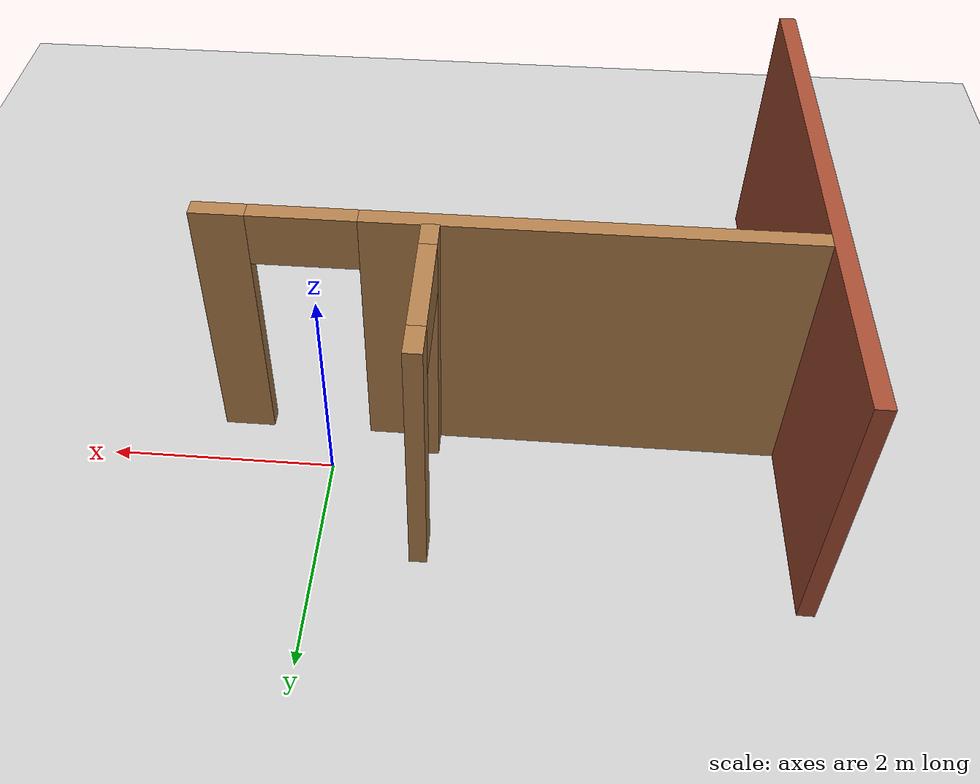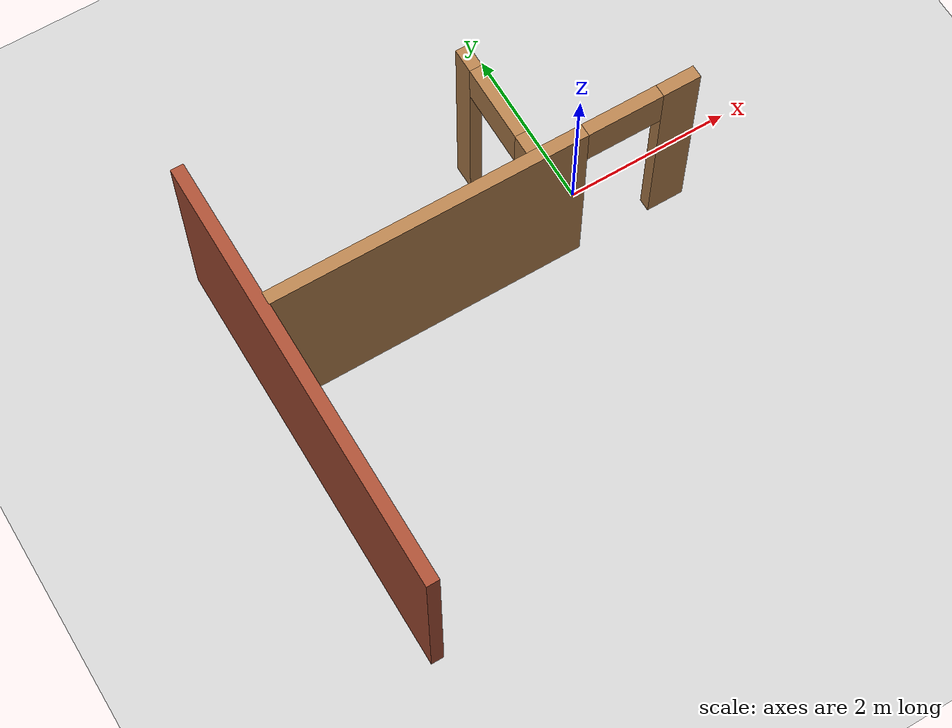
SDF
<sdf version="1.6">
 <world name="default">
  <model name="ground_plane">
   <static>1</static>
   <link name="link">
    <collision name="collision">
     <geometry><plane><normal>0 0 1</normal><size>100 100</size></plane></geometry>
     <surface>
      <contact><collide_bitmask>65535</collide_bitmask></contact>
      <friction><ode><mu>100</mu><mu2>50</mu2></ode></friction>
     </surface>
    </collision>
    <visual name="visual">
     <cast_shadows>0</cast_shadows>
     <geometry><plane><normal>0 0 1</normal><size>100 100</size></plane></geometry>
     <material>
      <script><uri>file://media/materials/scripts/gazebo.material</uri><name>Gazebo/Grey</name></script>
     </material>
    </visual>
   </link>
  </model>
  <model name="building">
   <link name="Wall_21">
    <pose>-1.42558 -0.646467 0 0 0 -1.5708</pose>
    <visual name="Wall_21_Visual_0">
     <pose>-0.57056 0 1.25 0 -0 0</pose>
     <geometry><box><size>0.282879 0.15 2.5</size></box></geometry>
     <material>
      <script><uri>file://media/materials/scripts/gazebo.material</uri><name>Gazebo/Wood</name></script>
      <ambient>1 1 1 1</ambient>
      <shader type="pixel"/>
      <diffuse>1 1 1 1</diffuse>
      <specular>0.2 0.2 0.2 1</specular>
      <emissive>0 0 0 1</emissive>
     </material>
     <meta><layer>0</layer></meta>
    </visual>
    <visual name="Wall_21_Visual_1">
     <pose>0.59144 0 1.25 0 -0 0</pose>
     <geometry><box><size>0.241121 0.15 2.5</size></box></geometry>
     <material>
      <script><uri>file://media/materials/scripts/gazebo.material</uri><name>Gazebo/Wood</name></script>
      <ambient>1 1 1 1</ambient>
      <shader type="pixel"/>
      <diffuse>1 1 1 1</diffuse>
      <specular>0.2 0.2 0.2 1</specular>
      <emissive>0 0 0 1</emissive>
     </material>
     <meta><layer>0</layer></meta>
    </visual>
    <visual name="Wall_21_Visual_2">
     <pose>0.020879 0 2.25 0 -0 0</pose>
     <geometry><box><size>0.9 0.15 0.5</size></box></geometry>
     <material>
      <script><uri>file://media/materials/scripts/gazebo.material</uri><name>Gazebo/Wood</name></script>
      <ambient>1 1 1 1</ambient>
      <shader type="pixel"/>
      <diffuse>1 1 1 1</diffuse>
      <specular>0.2 0.2 0.2 1</specular>
      <emissive>0 0 0 1</emissive>
     </material>
     <meta><layer>0</layer></meta>
    </visual>
    <collision name="Wall_21_Collision_0">
     <pose>-0.57056 0 1.25 0 -0 0</pose>
     <geometry><box><size>0.282879 0.15 2.5</size></box></geometry>
     <surface>
      <friction>
       <ode><mu>1</mu><mu2>1</mu2><fdir1>0 0 0</fdir1><slip1>0</slip1><slip2>0</slip2></ode>
       <torsional>
        <coefficient>1</coefficient>
        <patch_radius>0</patch_radius>
        <surface_radius>0</surface_radius>
        <use_patch_radius>1</use_patch_radius>
        <ode><slip>0</slip></ode>
       </torsional>
      </friction>
      <bounce><restitution_coefficient>0</restitution_coefficient><threshold>1e+06</threshold></bounce>
      <contact>
       <collide_without_contact>0</collide_without_contact>
       <collide_without_contact_bitmask>1</collide_without_contact_bitmask>
       <collide_bitmask>1</collide_bitmask>
       <ode>
        <soft_cfm>0</soft_cfm>
        <soft_erp>0.2</soft_erp>
        <kp>1e+13</kp>
        <kd>1</kd>
        <max_vel>0.01</max_vel>
        <min_depth>0</min_depth>
       </ode>
       <bullet>
        <split_impulse>1</split_impulse>
        <split_impulse_penetration_threshold>-0.01</split_impulse_penetration_threshold>
        <soft_cfm>0</soft_cfm>
        <soft_erp>0.2</soft_erp>
        <kp>1e+13</kp>
        <kd>1</kd>
       </bullet>
      </contact>
     </surface>
    </collision>
    <collision name="Wall_21_Collision_2">
     <pose>0.020879 0 2.25 0 -0 0</pose>
     <geometry><box><size>0.9 0.15 0.5</size></box></geometry>
     <surface>
      <friction>
       <ode><mu>1</mu><mu2>1</mu2><fdir1>0 0 0</fdir1><slip1>0</slip1><slip2>0</slip2></ode>
       <torsional>
        <coefficient>1</coefficient>
        <patch_radius>0</patch_radius>
        <surface_radius>0</surface_radius>
        <use_patch_radius>1</use_patch_radius>
        <ode><slip>0</slip></ode>
       </torsional>
      </friction>
      <bounce><restitution_coefficient>0</restitution_coefficient><threshold>1e+06</threshold></bounce>
      <contact>
       <collide_without_contact>0</collide_without_contact>
       <collide_without_contact_bitmask>1</collide_without_contact_bitmask>
       <collide_bitmask>1</collide_bitmask>
       <ode>
        <soft_cfm>0</soft_cfm>
        <soft_erp>0.2</soft_erp>
        <kp>1e+13</kp>
        <kd>1</kd>
        <max_vel>0.01</max_vel>
        <min_depth>0</min_depth>
       </ode>
       <bullet>
        <split_impulse>1</split_impulse>
        <split_impulse_penetration_threshold>-0.01</split_impulse_penetration_threshold>
        <soft_cfm>0</soft_cfm>
        <soft_erp>0.2</soft_erp>
        <kp>1e+13</kp>
        <kd>1</kd>
       </bullet>
      </contact>
     </surface>
    </collision>
    <collision name="Wall_21_Collision_1">
     <pose>0.59144 0 1.25 0 -0 0</pose>
     <geometry><box><size>0.241121 0.15 2.5</size></box></geometry>
     <surface>
      <friction>
       <ode><mu>1</mu><mu2>1</mu2><fdir1>0 0 0</fdir1><slip1>0</slip1><slip2>0</slip2></ode>
       <torsional>
        <coefficient>1</coefficient>
        <patch_radius>0</patch_radius>
        <surface_radius>0</surface_radius>
        <use_patch_radius>1</use_patch_radius>
        <ode><slip>0</slip></ode>
       </torsional>
      </friction>
      <bounce><restitution_coefficient>0</restitution_coefficient><threshold>1e+06</threshold></bounce>
      <contact>
       <collide_without_contact>0</collide_without_contact>
       <collide_without_contact_bitmask>1</collide_without_contact_bitmask>
       <collide_bitmask>1</collide_bitmask>
       <ode>
        <soft_cfm>0</soft_cfm>
        <soft_erp>0.2</soft_erp>
        <kp>1e+13</kp>
        <kd>1</kd>
        <max_vel>0.01</max_vel>
        <min_depth>0</min_depth>
       </ode>
       <bullet>
        <split_impulse>1</split_impulse>
        <split_impulse_penetration_threshold>-0.01</split_impulse_penetration_threshold>
        <soft_cfm>0</soft_cfm>
        <soft_erp>0.2</soft_erp>
        <kp>1e+13</kp>
        <kd>1</kd>
       </bullet>
      </contact>
     </surface>
    </collision>
   </link>
   <link name="Wall_23">
    <pose>-2.01686 -1.41497 0 0 -0 0</pose>
    <visual name="Wall_23_Visual_1">
     <pose>2.29774 0 1.25 0 -0 0</pose>
     <geometry><box><size>0.454012 0.15 2.5</size></box></geometry>
     <material>
      <script><uri>file://media/materials/scripts/gazebo.material</uri><name>Gazebo/Wood</name></script>
      <ambient>0.921569 0.807843 0.615686 1</ambient>
      <shader type="pixel"/>
      <diffuse>1 1 1 1</diffuse>
      <specular>0.2 0.2 0.2 1</specular>
      <emissive>0 0 0 1</emissive>
     </material>
     <meta><layer>0</layer></meta>
    </visual>
    <visual name="Wall_23_Visual_2">
     <pose>1.62074 0 2.25 0 -0 0</pose>
     <geometry><box><size>0.9 0.15 0.5</size></box></geometry>
     <material>
      <script><uri>file://media/materials/scripts/gazebo.material</uri><name>Gazebo/Wood</name></script>
      <ambient>0.921569 0.807843 0.615686 1</ambient>
      <shader type="pixel"/>
      <diffuse>1 1 1 1</diffuse>
      <specular>0.2 0.2 0.2 1</specular>
      <emissive>0 0 0 1</emissive>
     </material>
     <meta><layer>0</layer></meta>
    </visual>
    <visual name="Wall_23_Visual_0">
     <pose>-0.677006 0 1.25 0 -0 0</pose>
     <geometry><box><size>3.69549 0.15 2.5</size></box></geometry>
     <material>
      <script><uri>file://media/materials/scripts/gazebo.material</uri><name>Gazebo/Wood</name></script>
      <ambient>0.921569 0.807843 0.615686 1</ambient>
      <shader type="pixel"/>
      <diffuse>1 1 1 1</diffuse>
      <specular>0.2 0.2 0.2 1</specular>
      <emissive>0 0 0 1</emissive>
     </material>
     <meta><layer>0</layer></meta>
    </visual>
    <collision name="Wall_23_Collision_1">
     <pose>2.29774 0 1.25 0 -0 0</pose>
     <geometry><box><size>0.454012 0.15 2.5</size></box></geometry>
     <surface>
      <friction>
       <ode><mu>1</mu><mu2>1</mu2><fdir1>0 0 0</fdir1><slip1>0</slip1><slip2>0</slip2></ode>
       <torsional>
        <coefficient>1</coefficient>
        <patch_radius>0</patch_radius>
        <surface_radius>0</surface_radius>
        <use_patch_radius>1</use_patch_radius>
        <ode><slip>0</slip></ode>
       </torsional>
      </friction>
      <bounce><restitution_coefficient>0</restitution_coefficient><threshold>1e+06</threshold></bounce>
      <contact>
       <collide_without_contact>0</collide_without_contact>
       <collide_without_contact_bitmask>1</collide_without_contact_bitmask>
       <collide_bitmask>1</collide_bitmask>
       <ode>
        <soft_cfm>0</soft_cfm>
        <soft_erp>0.2</soft_erp>
        <kp>1e+13</kp>
        <kd>1</kd>
        <max_vel>0.01</max_vel>
        <min_depth>0</min_depth>
       </ode>
       <bullet>
        <split_impulse>1</split_impulse>
        <split_impulse_penetration_threshold>-0.01</split_impulse_penetration_threshold>
        <soft_cfm>0</soft_cfm>
        <soft_erp>0.2</soft_erp>
        <kp>1e+13</kp>
        <kd>1</kd>
       </bullet>
      </contact>
     </surface>
    </collision>
    <collision name="Wall_23_Collision_2">
     <pose>1.62074 0 2.25 0 -0 0</pose>
     <geometry><box><size>0.9 0.15 0.5</size></box></geometry>
     <surface>
      <friction>
       <ode><mu>1</mu><mu2>1</mu2><fdir1>0 0 0</fdir1><slip1>0</slip1><slip2>0</slip2></ode>
       <torsional>
        <coefficient>1</coefficient>
        <patch_radius>0</patch_radius>
        <surface_radius>0</surface_radius>
        <use_patch_radius>1</use_patch_radius>
        <ode><slip>0</slip></ode>
       </torsional>
      </friction>
      <bounce><restitution_coefficient>0</restitution_coefficient><threshold>1e+06</threshold></bounce>
      <contact>
       <collide_without_contact>0</collide_without_contact>
       <collide_without_contact_bitmask>1</collide_without_contact_bitmask>
       <collide_bitmask>1</collide_bitmask>
       <ode>
        <soft_cfm>0</soft_cfm>
        <soft_erp>0.2</soft_erp>
        <kp>1e+13</kp>
        <kd>1</kd>
        <max_vel>0.01</max_vel>
        <min_depth>0</min_depth>
       </ode>
       <bullet>
        <split_impulse>1</split_impulse>
        <split_impulse_penetration_threshold>-0.01</split_impulse_penetration_threshold>
        <soft_cfm>0</soft_cfm>
        <soft_erp>0.2</soft_erp>
        <kp>1e+13</kp>
        <kd>1</kd>
       </bullet>
      </contact>
     </surface>
    </collision>
    <collision name="Wall_23_Collision_0">
     <pose>-0.677006 0 1.25 0 -0 0</pose>
     <geometry><box><size>3.69549 0.15 2.5</size></box></geometry>
     <surface>
      <friction>
       <ode><mu>1</mu><mu2>1</mu2><fdir1>0 0 0</fdir1><slip1>0</slip1><slip2>0</slip2></ode>
       <torsional>
        <coefficient>1</coefficient>
        <patch_radius>0</patch_radius>
        <surface_radius>0</surface_radius>
        <use_patch_radius>1</use_patch_radius>
        <ode><slip>0</slip></ode>
       </torsional>
      </friction>
      <bounce><restitution_coefficient>0</restitution_coefficient><threshold>1e+06</threshold></bounce>
      <contact>
       <collide_without_contact>0</collide_without_contact>
       <collide_without_contact_bitmask>1</collide_without_contact_bitmask>
       <collide_bitmask>1</collide_bitmask>
       <ode>
        <soft_cfm>0</soft_cfm>
        <soft_erp>0.2</soft_erp>
        <kp>1e+13</kp>
        <kd>1</kd>
        <max_vel>0.01</max_vel>
        <min_depth>0</min_depth>
       </ode>
       <bullet>
        <split_impulse>1</split_impulse>
        <split_impulse_penetration_threshold>-0.01</split_impulse_penetration_threshold>
        <soft_cfm>0</soft_cfm>
        <soft_erp>0.2</soft_erp>
        <kp>1e+13</kp>
        <kd>1</kd>
       </bullet>
      </contact>
     </surface>
    </collision>
   </link>
   <link name="Wall_28">
    <pose>-4.60536 -2.22597 0 0 0 -1.5708</pose>
    <visual name="Wall_28_Visual">
     <pose>0 0 1.25 0 -0 0</pose>
     <geometry><box><size>5.112 0.15 2.5</size></box></geometry>
     <material>
      <script><uri>file://media/materials/scripts/gazebo.material</uri><name>Gazebo/Bricks</name></script>
      <ambient>0.921569 0.807843 0.615686 1</ambient>
      <shader type="pixel"/>
      <diffuse>1 1 1 1</diffuse>
      <specular>0.2 0.2 0.2 1</specular>
      <emissive>0 0 0 1</emissive>
     </material>
     <meta><layer>0</layer></meta>
    </visual>
    <collision name="Wall_28_Collision">
     <pose>0 0 1.25 0 -0 0</pose>
     <geometry><box><size>5.112 0.15 2.5</size></box></geometry>
     <surface>
      <friction>
       <ode><mu>1</mu><mu2>1</mu2><fdir1>0 0 0</fdir1><slip1>0</slip1><slip2>0</slip2></ode>
       <torsional>
        <coefficient>1</coefficient>
        <patch_radius>0</patch_radius>
        <surface_radius>0</surface_radius>
        <use_patch_radius>1</use_patch_radius>
        <ode><slip>0</slip></ode>
       </torsional>
      </friction>
      <bounce><restitution_coefficient>0</restitution_coefficient><threshold>1e+06</threshold></bounce>
      <contact>
       <collide_without_contact>0</collide_without_contact>
       <collide_without_contact_bitmask>1</collide_without_contact_bitmask>
       <collide_bitmask>1</collide_bitmask>
       <ode>
        <soft_cfm>0</soft_cfm>
        <soft_erp>0.2</soft_erp>
        <kp>1e+13</kp>
        <kd>1</kd>
        <max_vel>0.01</max_vel>
        <min_depth>0</min_depth>
       </ode>
       <bullet>
        <split_impulse>1</split_impulse>
        <split_impulse_penetration_threshold>-0.01</split_impulse_penetration_threshold>
        <soft_cfm>0</soft_cfm>
        <soft_erp>0.2</soft_erp>
        <kp>1e+13</kp>
        <kd>1</kd>
       </bullet>
      </contact>
     </surface>
    </collision>
   </link>
   <static>1</static>
   <pose>0.55726 0.89542 0 0 -0 0</pose>
  </model>
 </world>
</sdf>
